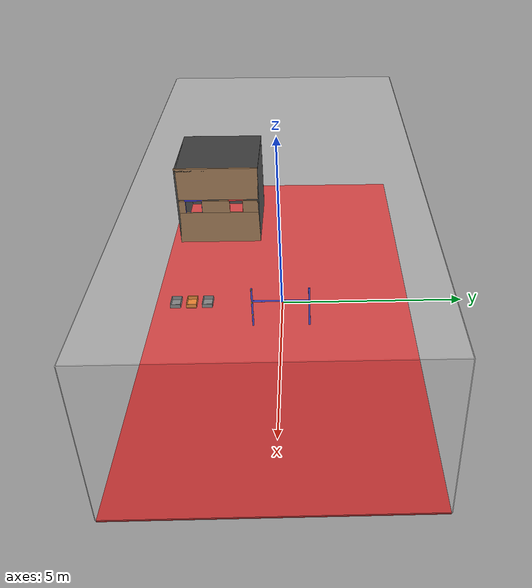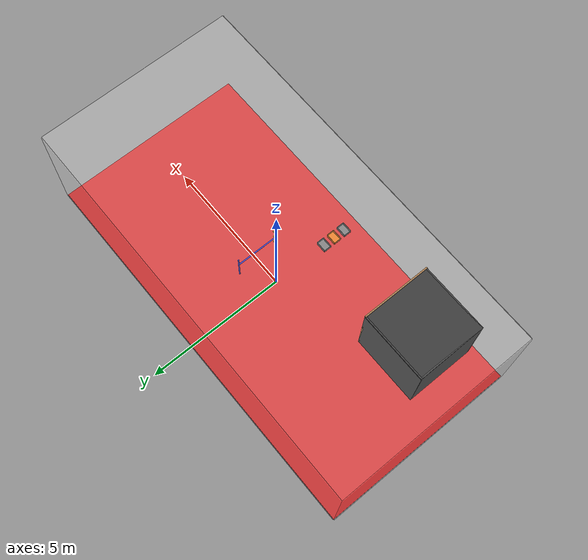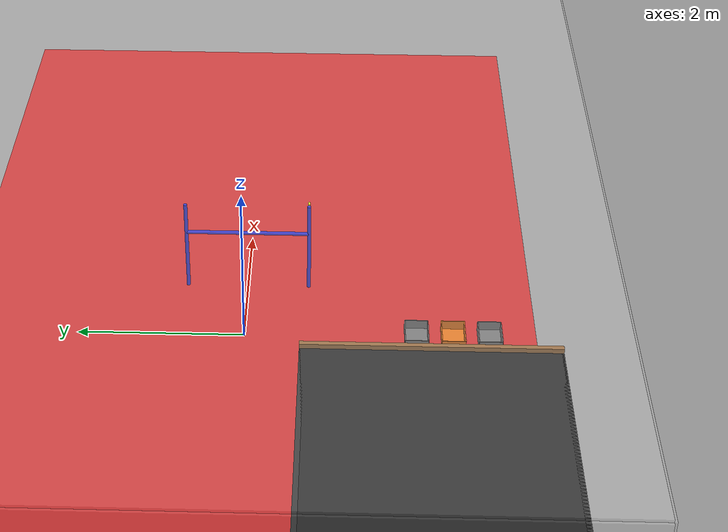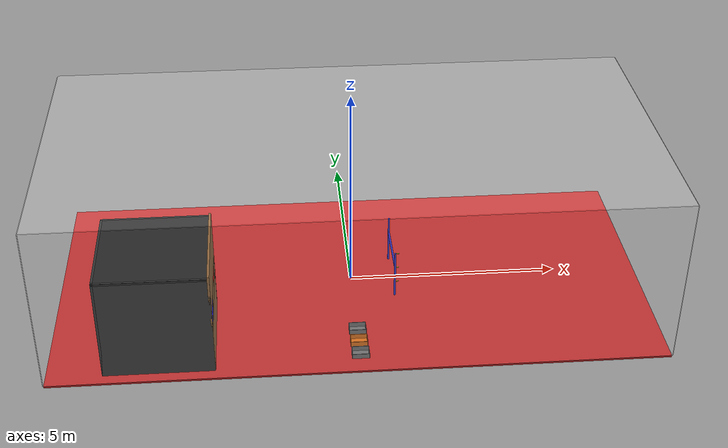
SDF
<sdf version="1.6">
 <world name="imav_indoor">
  <physics name="1ms" type="ignored">
   <max_step_size>0.001</max_step_size>
   <real_time_factor>1.0</real_time_factor>
  </physics>
  <light type="directional" name="ceiling_light">
   <pose>0 0 4 0 0 0</pose>
   <diffuse>0.9 0.9 0.9 1</diffuse>
   <specular>0.2 0.2 0.2 1</specular>
   <direction>0 0 -1</direction>
   <cast_shadows>false</cast_shadows>
  </light>
  <light type="point" name="fill_light">
   <pose>0 0 3.5 0 0 0</pose>
   <diffuse>0.5 0.5 0.5 1</diffuse>
   <specular>0.1 0.1 0.1 1</specular>
   <attenuation><range>20</range><linear>0.05</linear><constant>0.8</constant></attenuation>
   <cast_shadows>false</cast_shadows>
  </light>
  <include><uri>model://arena_walls</uri></include>
  <include><uri>model://blue_bar</uri><name>blue_bar</name><pose>1.0 0 0 0 0 0</pose></include>
  <include><uri>model://dark_room</uri><name>dark_room</name><pose>-4.5 -2.0 0 0 0 3.14159</pose></include>
  <include><uri>model://hot_spot_boxes</uri><name>hot_spot_boxes</name><pose>0 -2.5 0 0 0 0</pose></include>
 </world>
</sdf>

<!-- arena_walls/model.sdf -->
<!-- models/arena_walls/model.sdf -->
<sdf version="1.6">
  <model name="arena_walls">
    <static>true</static>

    <!-- Floor -->
    <link name="floor">
      <collision name="floor_col">
        <geometry><box><size>14 7 0.05</size></box></geometry>
      </collision>
      <visual name="floor_vis">
        <geometry><box><size>14 7 0.05</size></box></geometry>
        <material>
          <ambient>0.8 0.1 0.1 1</ambient>  <!-- red carpet -->
          <diffuse>0.8 0.1 0.1 1</diffuse>
        </material>
      </visual>
      <pose>0 0 -0.025 0 0 0</pose>
    </link>

    <!-- Ceiling (transparent, for realism) -->
    <link name="ceiling">
      <pose>0 0 4 0 0 0</pose>
      <collision name="ceiling_col">
        <geometry><box><size>14 7 0.05</size></box></geometry>
      </collision>
      <visual name="ceiling_vis">
        <geometry><box><size>14 7 0.05</size></box></geometry>
        <material><ambient>1 1 1 0.1</ambient></material>
      </visual>
    </link>

    <!-- North wall -->
    <link name="wall_north">
      <pose>0 3.5 2 0 0 0</pose>
      <collision name="col">
        <geometry><box><size>14 0.05 4</size></box></geometry>
      </collision>
      <visual name="vis">
        <geometry><box><size>14 0.05 4</size></box></geometry>
        <material><ambient>0.9 0.9 0.9 0.1</ambient><diffuse>0.9 0.9 0.9 0.1</diffuse></material>
      </visual>
    </link>

    <!-- South wall -->
    <link name="wall_south">
      <pose>0 -3.5 2 0 0 0</pose>
      <collision name="col">
        <geometry><box><size>14 0.05 4</size></box></geometry>
      </collision>
      <visual name="vis">
        <geometry><box><size>14 0.05 4</size></box></geometry>
        <material><ambient>0.9 0.9 0.9 0.1</ambient><diffuse>0.9 0.9 0.9 0.1</diffuse></material>
      </visual>
    </link>

    <!-- East wall -->
    <link name="wall_east">
      <pose>7 0 2 0 0 0</pose>
      <collision name="col">
        <geometry><box><size>0.05 7 4</size></box></geometry>
      </collision>
      <visual name="vis">
        <geometry><box><size>0.05 7 4</size></box></geometry>
        <material><ambient>0.9 0.9 0.9 0.1</ambient><diffuse>0.9 0.9 0.9 0.1</diffuse></material>
      </visual>
    </link>

    <!-- West wall -->
    <link name="wall_west">
      <pose>-7 0 2 0 0 0</pose>
      <collision name="col">
        <geometry><box><size>0.05 7 4</size></box></geometry>
      </collision>
      <visual name="vis">
        <geometry><box><size>0.05 7 4</size></box></geometry>
        <material><ambient>0.9 0.9 0.9 0.1</ambient><diffuse>0.9 0.9 0.9 0.1</diffuse></material>
      </visual>
    </link>

  </model>
</sdf>

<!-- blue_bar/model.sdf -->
<!-- Blue bar obstacle per rulebook Fig.10a.
     Two posts 1200mm tall, 1500mm apart. ONE horizontal bar (drone flies under).
     Bar default at 800mm (middle step). Marks at 400/800/1200mm. -->
<sdf version="1.6">
  <model name="blue_bar">
    <static>true</static>

    <!-- Left post -->
    <link name="post_left">
      <pose>0 -0.75 0.6 0 0 0</pose>
      <collision name="col"><geometry><cylinder><radius>0.0225</radius><length>1.2</length></cylinder></geometry></collision>
      <visual name="vis">
        <geometry><cylinder><radius>0.0225</radius><length>1.2</length></cylinder></geometry>
        <material><ambient>0.1 0.1 0.8 1</ambient><diffuse>0.1 0.1 0.8 1</diffuse></material>
      </visual>
    </link>

    <!-- Right post -->
    <link name="post_right">
      <pose>0 0.75 0.6 0 0 0</pose>
      <collision name="col"><geometry><cylinder><radius>0.0225</radius><length>1.2</length></cylinder></geometry></collision>
      <visual name="vis">
        <geometry><cylinder><radius>0.0225</radius><length>1.2</length></cylinder></geometry>
        <material><ambient>0.1 0.1 0.8 1</ambient><diffuse>0.1 0.1 0.8 1</diffuse></material>
      </visual>
    </link>

    <!-- Horizontal bar at 800mm (middle/default height). -->
    <link name="bar">
      <pose>0 0 0.8 1.5708 0 0</pose>
      <collision name="col"><geometry><cylinder><radius>0.0225</radius><length>1.5</length></cylinder></geometry></collision>
      <visual name="vis">
        <geometry><cylinder><radius>0.0225</radius><length>1.5</length></cylinder></geometry>
        <material><ambient>0.1 0.1 0.8 1</ambient><diffuse>0.1 0.1 0.8 1</diffuse></material>
      </visual>
    </link>

    <!-- Height indicator pegs (visual only): low=0.4m, mid=0.8m, high=1.2m -->
    <link name="peg_low">
      <pose>0.06 -0.75 0.4 0 1.5708 0</pose>
      <visual name="vis">
        <geometry><cylinder><radius>0.012</radius><length>0.05</length></cylinder></geometry>
        <material><ambient>1 1 0 1</ambient><diffuse>1 1 0 1</diffuse></material>
      </visual>
    </link>
    <link name="peg_mid">
      <pose>0.06 -0.75 0.8 0 1.5708 0</pose>
      <visual name="vis">
        <geometry><cylinder><radius>0.012</radius><length>0.05</length></cylinder></geometry>
        <material><ambient>1 1 0 1</ambient><diffuse>1 1 0 1</diffuse></material>
      </visual>
    </link>
    <link name="peg_high">
      <pose>0.06 -0.75 1.2 0 1.5708 0</pose>
      <visual name="vis">
        <geometry><cylinder><radius>0.012</radius><length>0.05</length></cylinder></geometry>
        <material><ambient>1 1 0 1</ambient><diffuse>1 1 0 1</diffuse></material>
      </visual>
    </link>

  </model>
</sdf>

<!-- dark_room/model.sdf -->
<sdf version="1.6">
  <model name="dark_room">
    <static>true</static>

    <!-- ==================== FRONT WALL (with windows) ==================== -->
    <!-- Wall is at local x = -1.25, windows face +x direction -->

    <!-- Bottom strip: full width, below both windows -->
    <link name="front_bottom">
      <pose>-1.225 0 0.525 0 0 0</pose>
      <visual name="vis">
        <geometry><box><size>0.05 2.5 1.05</size></box></geometry>
        <material><ambient>0.55 0.35 0.15 1</ambient><diffuse>0.55 0.35 0.15 1</diffuse></material>
      </visual>
      <collision name="col">
        <geometry><box><size>0.05 2.5 1.05</size></box></geometry>
      </collision>
    </link>

    <!-- Top strip: full width, above both windows -->
    <link name="front_top">
      <pose>-1.225 0 2.025 0 0 0</pose>
      <visual name="vis">
        <geometry><box><size>0.05 2.5 1.05</size></box></geometry>
        <material><ambient>0.55 0.35 0.15 1</ambient><diffuse>0.55 0.35 0.15 1</diffuse></material>
      </visual>
      <collision name="col">
        <geometry><box><size>0.05 2.5 1.05</size></box></geometry>
      </collision>
    </link>

    <!-- Left panel: solid, left of red window -->
    <!-- Red window spans y: -0.75 to -0.35, width = 0.40m -->
    <link name="front_left">
      <pose>-1.225 -1.0 1.25 0 0 0</pose>
      <visual name="vis">
        <geometry><box><size>0.05 0.5 0.40</size></box></geometry>
        <material><ambient>0.55 0.35 0.15 1</ambient><diffuse>0.55 0.35 0.15 1</diffuse></material>
      </visual>
      <collision name="col">
        <geometry><box><size>0.05 0.5 0.40</size></box></geometry>
      </collision>
    </link>

    <!-- Middle panel: between red and blue windows -->
    <!-- Between y=-0.35 and y=0.50, width = 0.85m -->
    <link name="front_middle">
      <pose>-1.225 0.075 1.25 0 0 0</pose>
      <visual name="vis">
        <geometry><box><size>0.05 0.85 0.40</size></box></geometry>
        <material><ambient>0.55 0.35 0.15 1</ambient><diffuse>0.55 0.35 0.15 1</diffuse></material>
      </visual>
      <collision name="col">
        <geometry><box><size>0.05 0.85 0.40</size></box></geometry>
      </collision>
    </link>

    <!-- Right panel: right of blue window -->
    <!-- Blue window spans y: 0.50 to 1.00, width = 0.50m -->
    <link name="front_right">
      <pose>-1.225 1.125 1.25 0 0 0</pose>
      <visual name="vis">
        <geometry><box><size>0.05 0.25 0.40</size></box></geometry>
        <material><ambient>0.55 0.35 0.15 1</ambient><diffuse>0.55 0.35 0.15 1</diffuse></material>
      </visual>
      <collision name="col">
        <geometry><box><size>0.05 0.25 0.40</size></box></geometry>
      </collision>
    </link>

    <!-- ==================== WINDOW FRAMES ==================== -->

    <!-- Red window frame (400x400mm opening) -->
    <!-- Top border -->
    <link name="red_win_top">
      <pose>-1.225 -0.55 1.475 0 0 0</pose>
      <visual name="vis">
        <geometry><box><size>0.04 0.44 0.05</size></box></geometry>
        <material><ambient>1 0 0 1</ambient><diffuse>1 0 0 1</diffuse></material>
      </visual>
      <collision name="col"><geometry><box><size>0.04 0.44 0.05</size></box></geometry></collision>
    </link>
    <!-- Bottom border -->
    <link name="red_win_bot">
      <pose>-1.225 -0.55 1.025 0 0 0</pose>
      <visual name="vis">
        <geometry><box><size>0.04 0.44 0.05</size></box></geometry>
        <material><ambient>1 0 0 1</ambient><diffuse>1 0 0 1</diffuse></material>
      </visual>
      <collision name="col"><geometry><box><size>0.04 0.44 0.05</size></box></geometry></collision>
    </link>
    <!-- Left border -->
    <link name="red_win_left">
      <pose>-1.225 -0.77 1.25 0 0 0</pose>
      <visual name="vis">
        <geometry><box><size>0.04 0.05 0.40</size></box></geometry>
        <material><ambient>1 0 0 1</ambient><diffuse>1 0 0 1</diffuse></material>
      </visual>
      <collision name="col"><geometry><box><size>0.04 0.05 0.40</size></box></geometry></collision>
    </link>
    <!-- Right border -->
    <link name="red_win_right">
      <pose>-1.225 -0.33 1.25 0 0 0</pose>
      <visual name="vis">
        <geometry><box><size>0.04 0.05 0.40</size></box></geometry>
        <material><ambient>1 0 0 1</ambient><diffuse>1 0 0 1</diffuse></material>
      </visual>
      <collision name="col"><geometry><box><size>0.04 0.05 0.40</size></box></geometry></collision>
    </link>

    <!-- Blue window frame (500x400mm opening) -->
    <!-- Top border -->
    <link name="blue_win_top">
      <pose>-1.225 0.75 1.475 0 0 0</pose>
      <visual name="vis">
        <geometry><box><size>0.04 0.54 0.05</size></box></geometry>
        <material><ambient>0 0 1 1</ambient><diffuse>0 0 1 1</diffuse></material>
      </visual>
      <collision name="col"><geometry><box><size>0.04 0.54 0.05</size></box></geometry></collision>
    </link>
    <!-- Bottom border -->
    <link name="blue_win_bot">
      <pose>-1.225 0.75 1.025 0 0 0</pose>
      <visual name="vis">
        <geometry><box><size>0.04 0.54 0.05</size></box></geometry>
        <material><ambient>0 0 1 1</ambient><diffuse>0 0 1 1</diffuse></material>
      </visual>
      <collision name="col"><geometry><box><size>0.04 0.54 0.05</size></box></geometry></collision>
    </link>
    <!-- Left border -->
    <link name="blue_win_left">
      <pose>-1.225 0.48 1.25 0 0 0</pose>
      <visual name="vis">
        <geometry><box><size>0.04 0.05 0.40</size></box></geometry>
        <material><ambient>0 0 1 1</ambient><diffuse>0 0 1 1</diffuse></material>
      </visual>
      <collision name="col"><geometry><box><size>0.04 0.05 0.40</size></box></geometry></collision>
    </link>
    <!-- Right border -->
    <link name="blue_win_right">
      <pose>-1.225 1.02 1.25 0 0 0</pose>
      <visual name="vis">
        <geometry><box><size>0.04 0.05 0.40</size></box></geometry>
        <material><ambient>0 0 1 1</ambient><diffuse>0 0 1 1</diffuse></material>
      </visual>
      <collision name="col"><geometry><box><size>0.04 0.05 0.40</size></box></geometry></collision>
    </link>

    <!-- ==================== REMAINING WALLS ==================== -->

    <!-- Back wall (solid) -->
    <link name="wall_back">
      <pose>1.225 0 1.25 0 0 0</pose>
      <visual name="vis">
        <geometry><box><size>0.05 2.5 2.5</size></box></geometry>
        <material><ambient>0.1 0.1 0.1 1</ambient><diffuse>0.1 0.1 0.1 1</diffuse></material>
      </visual>
      <collision name="col"><geometry><box><size>0.05 2.5 2.5</size></box></geometry></collision>
    </link>

    <!-- Left wall -->
    <link name="wall_left">
      <pose>0 -1.225 1.25 0 0 0</pose>
      <visual name="vis">
        <geometry><box><size>2.5 0.05 2.5</size></box></geometry>
        <material><ambient>0.1 0.1 0.1 1</ambient><diffuse>0.1 0.1 0.1 1</diffuse></material>
      </visual>
      <collision name="col"><geometry><box><size>2.5 0.05 2.5</size></box></geometry></collision>
    </link>

    <!-- Right wall -->
    <link name="wall_right">
      <pose>0 1.225 1.25 0 0 0</pose>
      <visual name="vis">
        <geometry><box><size>2.5 0.05 2.5</size></box></geometry>
        <material><ambient>0.1 0.1 0.1 1</ambient><diffuse>0.1 0.1 0.1 1</diffuse></material>
      </visual>
      <collision name="col"><geometry><box><size>2.5 0.05 2.5</size></box></geometry></collision>
    </link>

    <!-- Ceiling -->
    <link name="ceiling">
      <pose>0 0 2.475 0 0 0</pose>
      <visual name="vis">
        <geometry><box><size>2.5 2.5 0.05</size></box></geometry>
        <material><ambient>0.05 0.05 0.05 1</ambient><diffuse>0.05 0.05 0.05 1</diffuse></material>
      </visual>
      <collision name="col"><geometry><box><size>2.5 2.5 0.05</size></box></geometry></collision>
    </link>

    <!-- ==================== INTERIOR LIGHT (very dim) ==================== -->
    <light name="interior_light" type="point">
      <pose>0 0 2.2 0 0 0</pose>
      <diffuse>0.05 0.05 0.05 1</diffuse>    <!-- very dark -->
      <specular>0 0 0 1</specular>
      <attenuation>
        <range>3</range>
        <linear>0.5</linear>
        <constant>0.8</constant>
      </attenuation>
      <cast_shadows>false</cast_shadows>
    </light>

    <!-- ==================== BABY PLACEHOLDERS ==================== -->
    <!-- Reposition these on competition day -->

    <link name="baby_1">
      <pose>0.5 0.3 0.2 0 0 0</pose>
      <visual name="vis">
        <geometry><cylinder><radius>0.1</radius><length>0.35</length></cylinder></geometry>
        <material><ambient>0.9 0.8 0.7 1</ambient></material>
      </visual>
    </link>

    <link name="baby_2">
      <pose>-0.3 -0.4 0.2 0 0 0</pose>
      <visual name="vis">
        <geometry><cylinder><radius>0.1</radius><length>0.35</length></cylinder></geometry>
        <material><ambient>0.9 0.8 0.7 1</ambient></material>
      </visual>
    </link>

  </model>
</sdf>

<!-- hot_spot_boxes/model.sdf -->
<sdf version="1.6">
  <model name="hot_spot_boxes">
    <static>true</static>

    <!-- Wall thickness -->
    <!-- Box outer: 0.396 x 0.278 x 0.132m. Wall thickness: 0.01m. -->

    <!-- ===== LEFT BOX (y = -0.438m center, cold) ===== -->
    <link name="left_base">
      <pose>0 -0.438 0.005 0 0 0</pose>
      <collision name="col"><geometry><box><size>0.396 0.278 0.01</size></box></geometry></collision>
      <visual name="vis">
        <geometry><box><size>0.396 0.278 0.01</size></box></geometry>
        <material><ambient>0.4 0.4 0.4 1</ambient><diffuse>0.4 0.4 0.4 1</diffuse></material>
      </visual>
    </link>
    <link name="left_front">
      <pose>0.193 -0.438 0.066 0 0 0</pose>
      <collision name="col"><geometry><box><size>0.01 0.278 0.122</size></box></geometry></collision>
      <visual name="vis">
        <geometry><box><size>0.01 0.278 0.122</size></box></geometry>
        <material><ambient>0.4 0.4 0.4 1</ambient><diffuse>0.4 0.4 0.4 1</diffuse></material>
      </visual>
    </link>
    <link name="left_back">
      <pose>-0.193 -0.438 0.066 0 0 0</pose>
      <collision name="col"><geometry><box><size>0.01 0.278 0.122</size></box></geometry></collision>
      <visual name="vis">
        <geometry><box><size>0.01 0.278 0.122</size></box></geometry>
        <material><ambient>0.4 0.4 0.4 1</ambient><diffuse>0.4 0.4 0.4 1</diffuse></material>
      </visual>
    </link>
    <link name="left_sideL">
      <pose>0 -0.577 0.066 0 0 0</pose>
      <collision name="col"><geometry><box><size>0.376 0.01 0.122</size></box></geometry></collision>
      <visual name="vis">
        <geometry><box><size>0.376 0.01 0.122</size></box></geometry>
        <material><ambient>0.4 0.4 0.4 1</ambient><diffuse>0.4 0.4 0.4 1</diffuse></material>
      </visual>
    </link>
    <link name="left_sideR">
      <pose>0 -0.299 0.066 0 0 0</pose>
      <collision name="col"><geometry><box><size>0.376 0.01 0.122</size></box></geometry></collision>
      <visual name="vis">
        <geometry><box><size>0.376 0.01 0.122</size></box></geometry>
        <material><ambient>0.4 0.4 0.4 1</ambient><diffuse>0.4 0.4 0.4 1</diffuse></material>
      </visual>
    </link>

    <!-- ===== CENTER BOX (y = 0.0, HOT - orange) ===== -->
    <link name="hot_base">
      <pose>0 0 0.005 0 0 0</pose>
      <collision name="col"><geometry><box><size>0.396 0.278 0.01</size></box></geometry></collision>
      <visual name="vis">
        <geometry><box><size>0.396 0.278 0.01</size></box></geometry>
        <material><ambient>0.9 0.4 0.0 1</ambient><diffuse>0.9 0.4 0.0 1</diffuse></material>
      </visual>
    </link>
    <link name="hot_front">
      <pose>0.193 0 0.066 0 0 0</pose>
      <collision name="col"><geometry><box><size>0.01 0.278 0.122</size></box></geometry></collision>
      <visual name="vis">
        <geometry><box><size>0.01 0.278 0.122</size></box></geometry>
        <material><ambient>0.9 0.4 0.0 1</ambient><diffuse>0.9 0.4 0.0 1</diffuse></material>
      </visual>
    </link>
    <link name="hot_back">
      <pose>-0.193 0 0.066 0 0 0</pose>
      <collision name="col"><geometry><box><size>0.01 0.278 0.122</size></box></geometry></collision>
      <visual name="vis">
        <geometry><box><size>0.01 0.278 0.122</size></box></geometry>
        <material><ambient>0.9 0.4 0.0 1</ambient><diffuse>0.9 0.4 0.0 1</diffuse></material>
      </visual>
    </link>
    <link name="hot_sideL">
      <pose>0 -0.139 0.066 0 0 0</pose>
      <collision name="col"><geometry><box><size>0.376 0.01 0.122</size></box></geometry></collision>
      <visual name="vis">
        <geometry><box><size>0.376 0.01 0.122</size></box></geometry>
        <material><ambient>0.9 0.4 0.0 1</ambient><diffuse>0.9 0.4 0.0 1</diffuse></material>
      </visual>
    </link>
    <link name="hot_sideR">
      <pose>0 0.139 0.066 0 0 0</pose>
      <collision name="col"><geometry><box><size>0.376 0.01 0.122</size></box></geometry></collision>
      <visual name="vis">
        <geometry><box><size>0.376 0.01 0.122</size></box></geometry>
        <material><ambient>0.9 0.4 0.0 1</ambient><diffuse>0.9 0.4 0.0 1</diffuse></material>
      </visual>
    </link>

    <!-- ===== RIGHT BOX (y = +0.438m, cold) ===== -->
    <link name="right_base">
      <pose>0 0.438 0.005 0 0 0</pose>
      <collision name="col"><geometry><box><size>0.396 0.278 0.01</size></box></geometry></collision>
      <visual name="vis">
        <geometry><box><size>0.396 0.278 0.01</size></box></geometry>
        <material><ambient>0.4 0.4 0.4 1</ambient><diffuse>0.4 0.4 0.4 1</diffuse></material>
      </visual>
    </link>
    <link name="right_front">
      <pose>0.193 0.438 0.066 0 0 0</pose>
      <collision name="col"><geometry><box><size>0.01 0.278 0.122</size></box></geometry></collision>
      <visual name="vis">
        <geometry><box><size>0.01 0.278 0.122</size></box></geometry>
        <material><ambient>0.4 0.4 0.4 1</ambient><diffuse>0.4 0.4 0.4 1</diffuse></material>
      </visual>
    </link>
    <link name="right_back">
      <pose>-0.193 0.438 0.066 0 0 0</pose>
      <collision name="col"><geometry><box><size>0.01 0.278 0.122</size></box></geometry></collision>
      <visual name="vis">
        <geometry><box><size>0.01 0.278 0.122</size></box></geometry>
        <material><ambient>0.4 0.4 0.4 1</ambient><diffuse>0.4 0.4 0.4 1</diffuse></material>
      </visual>
    </link>
    <link name="right_sideL">
      <pose>0 0.299 0.066 0 0 0</pose>
      <collision name="col"><geometry><box><size>0.376 0.01 0.122</size></box></geometry></collision>
      <visual name="vis">
        <geometry><box><size>0.376 0.01 0.122</size></box></geometry>
        <material><ambient>0.4 0.4 0.4 1</ambient><diffuse>0.4 0.4 0.4 1</diffuse></material>
      </visual>
    </link>
    <link name="right_sideR">
      <pose>0 0.577 0.066 0 0 0</pose>
      <collision name="col"><geometry><box><size>0.376 0.01 0.122</size></box></geometry></collision>
      <visual name="vis">
        <geometry><box><size>0.376 0.01 0.122</size></box></geometry>
        <material><ambient>0.4 0.4 0.4 1</ambient><diffuse>0.4 0.4 0.4 1</diffuse></material>
      </visual>
    </link>

  </model>
</sdf>
